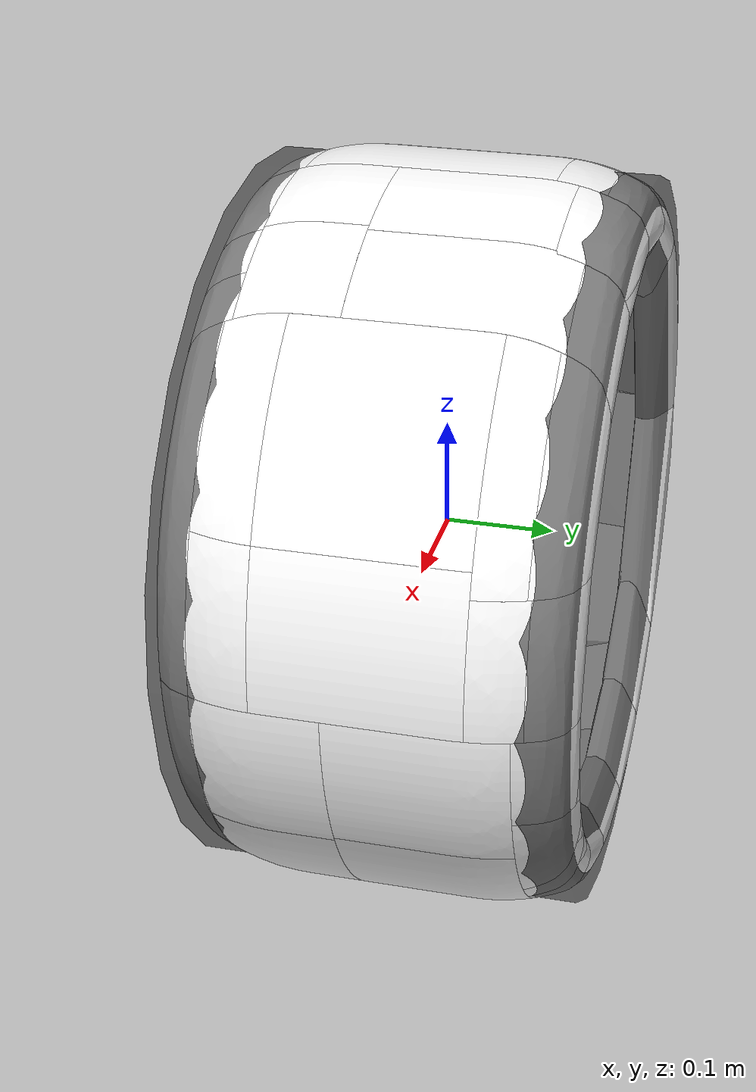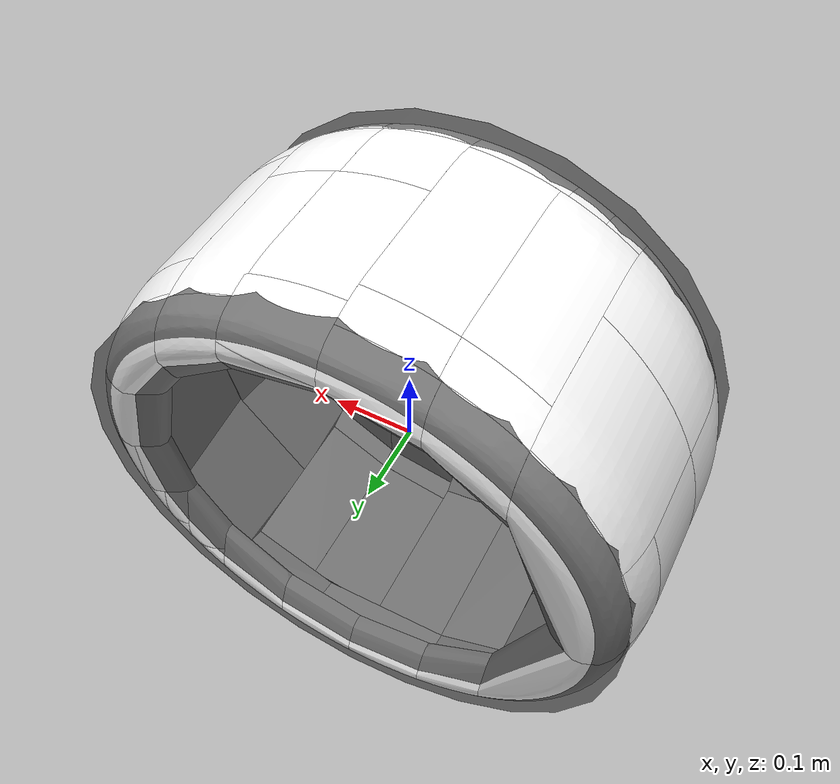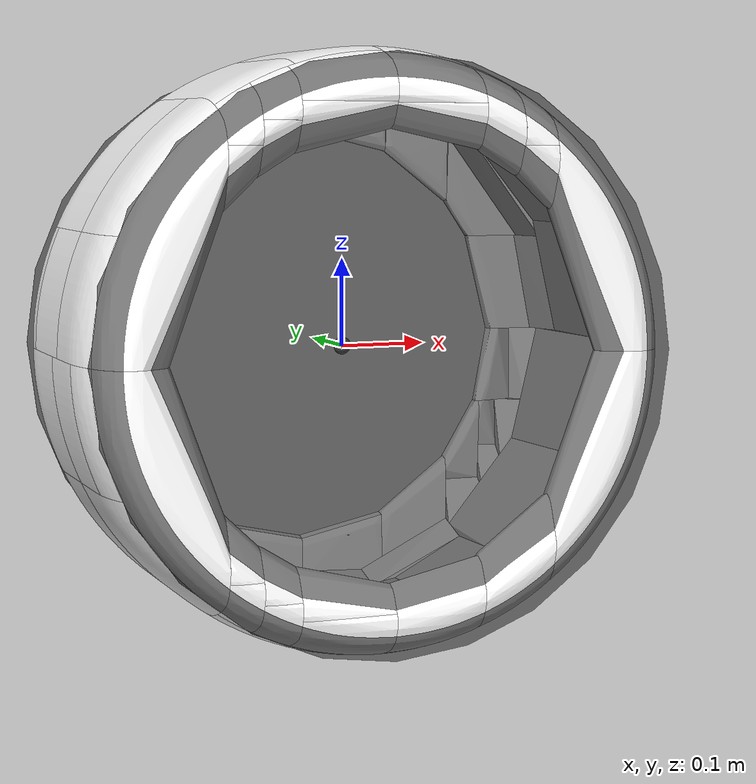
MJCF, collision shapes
<mujoco model="tire_rubber">
<!-- Copyright (c) 2024 Boston Dynamics AI Institute LLC. All rights reserved. -->
    <include file="tire_rubber_defs.xml" />
    <worldbody>
        <body name="tire_rubber">
            <joint name="tire_rubber_joint" type="free"/>
            <!-- https://en.wikipedia.org/wiki/List_of_moments_of_inertia -->
            <inertial pos="0 0 0" mass="15.3" diaginertia="0.57 0.96 0.57"/>

            <geom name="object_primitive_approx" type="cylinder" class="tire_rubber_visual" size="0.33 0.17" quat="1 1 0 0" rgba="0 0 0 0.5"/>
            <geom name="tire_rubber_visual" type="mesh" class="tire_rubber_visual" mesh="tire_rubber_visual" material="tire_rubber_black"/>
            <geom name="tire_rubber_0_collision" type="mesh" class="tire_rubber_collision" mesh="tire_rubber_0_collision"/>
            <geom name="tire_rubber_1_collision" type="mesh" class="tire_rubber_collision" mesh="tire_rubber_1_collision"/>
            <geom name="tire_rubber_2_collision" type="mesh" class="tire_rubber_collision" mesh="tire_rubber_2_collision"/>
            <geom name="tire_rubber_3_collision" type="mesh" class="tire_rubber_collision" mesh="tire_rubber_3_collision"/>
            <geom name="tire_rubber_4_collision" type="mesh" class="tire_rubber_collision" mesh="tire_rubber_4_collision"/>
            <geom name="tire_rubber_5_collision" type="mesh" class="tire_rubber_collision" mesh="tire_rubber_5_collision"/>
            <geom name="tire_rubber_6_collision" type="mesh" class="tire_rubber_collision" mesh="tire_rubber_6_collision"/>
            <geom name="tire_rubber_7_collision" type="mesh" class="tire_rubber_collision" mesh="tire_rubber_7_collision"/>
            <geom name="tire_rubber_8_collision" type="mesh" class="tire_rubber_collision" mesh="tire_rubber_8_collision"/>
            <geom name="tire_rubber_9_collision" type="mesh" class="tire_rubber_collision" mesh="tire_rubber_9_collision"/>
            <geom name="tire_rubber_10_collision" type="mesh" class="tire_rubber_collision" mesh="tire_rubber_10_collision"/>
            <geom name="tire_rubber_11_collision" type="mesh" class="tire_rubber_collision" mesh="tire_rubber_11_collision"/>
            <geom name="tire_rubber_12_collision" type="mesh" class="tire_rubber_collision" mesh="tire_rubber_12_collision"/>
            <geom name="tire_rubber_13_collision" type="mesh" class="tire_rubber_collision" mesh="tire_rubber_13_collision"/>
            <geom name="tire_rubber_14_collision" type="mesh" class="tire_rubber_collision" mesh="tire_rubber_14_collision"/>
            <geom name="tire_rubber_15_collision" type="mesh" class="tire_rubber_collision" mesh="tire_rubber_15_collision"/>
            <geom name="tire_rubber_16_collision" type="mesh" class="tire_rubber_collision" mesh="tire_rubber_16_collision"/>
            <geom name="tire_rubber_17_collision" type="mesh" class="tire_rubber_collision" mesh="tire_rubber_17_collision"/>
            <geom name="tire_rubber_18_collision" type="mesh" class="tire_rubber_collision" mesh="tire_rubber_18_collision"/>
            <geom name="tire_rubber_19_collision" type="mesh" class="tire_rubber_collision" mesh="tire_rubber_19_collision"/>
            <geom name="tire_rubber_20_collision" type="mesh" class="tire_rubber_collision" mesh="tire_rubber_20_collision"/>
            <geom name="tire_rubber_21_collision" type="mesh" class="tire_rubber_collision" mesh="tire_rubber_21_collision"/>
            <geom name="tire_rubber_22_collision" type="mesh" class="tire_rubber_collision" mesh="tire_rubber_22_collision"/>
            <geom name="tire_rubber_23_collision" type="mesh" class="tire_rubber_collision" mesh="tire_rubber_23_collision"/>
            <geom name="tire_rubber_24_collision" type="mesh" class="tire_rubber_collision" mesh="tire_rubber_24_collision"/>
            <geom name="tire_rubber_25_collision" type="mesh" class="tire_rubber_collision" mesh="tire_rubber_25_collision"/>
            <geom name="tire_rubber_26_collision" type="mesh" class="tire_rubber_collision" mesh="tire_rubber_26_collision"/>
            <geom name="tire_rubber_27_collision" type="mesh" class="tire_rubber_collision" mesh="tire_rubber_27_collision"/>
            <geom name="tire_rubber_28_collision" type="mesh" class="tire_rubber_collision" mesh="tire_rubber_28_collision"/>
            <geom name="tire_rubber_29_collision" type="mesh" class="tire_rubber_collision" mesh="tire_rubber_29_collision"/>
            <geom name="tire_rubber_30_collision" type="mesh" class="tire_rubber_collision" mesh="tire_rubber_30_collision"/>
            <geom name="tire_rubber_31_collision" type="mesh" class="tire_rubber_collision" mesh="tire_rubber_31_collision"/>
            <geom name="tire_rubber_32_collision" type="mesh" class="tire_rubber_collision" mesh="tire_rubber_32_collision"/>
            <geom name="tire_rubber_33_collision" type="mesh" class="tire_rubber_collision" mesh="tire_rubber_33_collision"/>
            <geom name="tire_rubber_34_collision" type="mesh" class="tire_rubber_collision" mesh="tire_rubber_34_collision"/>
            <geom name="tire_rubber_35_collision" type="mesh" class="tire_rubber_collision" mesh="tire_rubber_35_collision"/>
            <geom name="tire_rubber_36_collision" type="mesh" class="tire_rubber_collision" mesh="tire_rubber_36_collision"/>
            <geom name="tire_rubber_37_collision" type="mesh" class="tire_rubber_collision" mesh="tire_rubber_37_collision"/>
            <geom name="tire_rubber_38_collision" type="mesh" class="tire_rubber_collision" mesh="tire_rubber_38_collision"/>
            <geom name="tire_rubber_39_collision" type="mesh" class="tire_rubber_collision" mesh="tire_rubber_39_collision"/>
            <geom name="tire_rubber_40_collision" type="mesh" class="tire_rubber_collision" mesh="tire_rubber_40_collision"/>
            <geom name="tire_rubber_41_collision" type="mesh" class="tire_rubber_collision" mesh="tire_rubber_41_collision"/>
            <geom name="tire_rubber_42_collision" type="mesh" class="tire_rubber_collision" mesh="tire_rubber_42_collision"/>
            <geom name="tire_rubber_43_collision" type="mesh" class="tire_rubber_collision" mesh="tire_rubber_43_collision"/>
            <geom name="tire_rubber_44_collision" type="mesh" class="tire_rubber_collision" mesh="tire_rubber_44_collision"/>
            <geom name="tire_rubber_45_collision" type="mesh" class="tire_rubber_collision" mesh="tire_rubber_45_collision"/>
            <geom name="tire_rubber_46_collision" type="mesh" class="tire_rubber_collision" mesh="tire_rubber_46_collision"/>
            <geom name="tire_rubber_47_collision" type="mesh" class="tire_rubber_collision" mesh="tire_rubber_47_collision"/>
            <geom name="tire_rubber_48_collision" type="mesh" class="tire_rubber_collision" mesh="tire_rubber_48_collision"/>
            <geom name="tire_rubber_49_collision" type="mesh" class="tire_rubber_collision" mesh="tire_rubber_49_collision"/>
            <geom name="tire_rubber_50_collision" type="mesh" class="tire_rubber_collision" mesh="tire_rubber_50_collision"/>
            <geom name="tire_rubber_51_collision" type="mesh" class="tire_rubber_collision" mesh="tire_rubber_51_collision"/>
            <geom name="tire_rubber_52_collision" type="mesh" class="tire_rubber_collision" mesh="tire_rubber_52_collision"/>
            <geom name="tire_rubber_53_collision" type="mesh" class="tire_rubber_collision" mesh="tire_rubber_53_collision"/>
            <geom name="tire_rubber_54_collision" type="mesh" class="tire_rubber_collision" mesh="tire_rubber_54_collision"/>
            <geom name="tire_rubber_55_collision" type="mesh" class="tire_rubber_collision" mesh="tire_rubber_55_collision"/>
            <geom name="tire_rubber_56_collision" type="mesh" class="tire_rubber_collision" mesh="tire_rubber_56_collision"/>
            <geom name="tire_rubber_57_collision" type="mesh" class="tire_rubber_collision" mesh="tire_rubber_57_collision"/>
            <geom name="tire_rubber_58_collision" type="mesh" class="tire_rubber_collision" mesh="tire_rubber_58_collision"/>
            <geom name="tire_rubber_59_collision" type="mesh" class="tire_rubber_collision" mesh="tire_rubber_59_collision"/>
            <geom name="tire_rubber_60_collision" type="mesh" class="tire_rubber_collision" mesh="tire_rubber_60_collision"/>
            <geom name="tire_rubber_61_collision" type="mesh" class="tire_rubber_collision" mesh="tire_rubber_61_collision"/>
            <geom name="tire_rubber_62_collision" type="mesh" class="tire_rubber_collision" mesh="tire_rubber_62_collision"/>
            <geom name="tire_rubber_63_collision" type="mesh" class="tire_rubber_collision" mesh="tire_rubber_63_collision"/>
            <geom name="tire_rubber_64_collision" type="mesh" class="tire_rubber_collision" mesh="tire_rubber_64_collision"/>
            <geom name="tire_rubber_65_collision" type="mesh" class="tire_rubber_collision" mesh="tire_rubber_65_collision"/>
            <geom name="tire_rubber_66_collision" type="mesh" class="tire_rubber_collision" mesh="tire_rubber_66_collision"/>
            <geom name="tire_rubber_67_collision" type="mesh" class="tire_rubber_collision" mesh="tire_rubber_67_collision"/>
            <geom name="tire_rubber_68_collision" type="mesh" class="tire_rubber_collision" mesh="tire_rubber_68_collision"/>
            <geom name="tire_rubber_69_collision" type="mesh" class="tire_rubber_collision" mesh="tire_rubber_69_collision"/>
            <geom name="tire_rubber_70_collision" type="mesh" class="tire_rubber_collision" mesh="tire_rubber_70_collision"/>
            <geom name="tire_rubber_71_collision" type="mesh" class="tire_rubber_collision" mesh="tire_rubber_71_collision"/>
            <geom name="tire_rubber_72_collision" type="mesh" class="tire_rubber_collision" mesh="tire_rubber_72_collision"/>
            <geom name="tire_rubber_73_collision" type="mesh" class="tire_rubber_collision" mesh="tire_rubber_73_collision"/>
            <geom name="tire_rubber_74_collision" type="mesh" class="tire_rubber_collision" mesh="tire_rubber_74_collision"/>
            <geom name="tire_rubber_75_collision" type="mesh" class="tire_rubber_collision" mesh="tire_rubber_75_collision"/>
            <geom name="tire_rubber_76_collision" type="mesh" class="tire_rubber_collision" mesh="tire_rubber_76_collision"/>
            <geom name="tire_rubber_77_collision" type="mesh" class="tire_rubber_collision" mesh="tire_rubber_77_collision"/>
            <geom name="tire_rubber_78_collision" type="mesh" class="tire_rubber_collision" mesh="tire_rubber_78_collision"/>
            <geom name="tire_rubber_79_collision" type="mesh" class="tire_rubber_collision" mesh="tire_rubber_79_collision"/>
            <geom name="tire_rubber_80_collision" type="mesh" class="tire_rubber_collision" mesh="tire_rubber_80_collision"/>
            <site name="trace_tire_rubber" pos="0 0 0" size="0.01"/>

            <site name="site_object" pos="0 0 0" size="0.01"/>
        </body>
    </worldbody>

</mujoco>

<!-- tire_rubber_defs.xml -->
<mujoco>
  <!-- Copyright (c) 2025 Boston Dynamics AI Institute LLC. All rights reserved. -->

  <default>
    <default class="tire_rubber_visual">
      <geom type="mesh" contype="0" conaffinity="0" group="2"/>
    </default>
    <default class="tire_rubber_collision">
      <geom friction="1.15 1.0" priority="6" material="tire_rubber_semi_transparent"/>
    </default>
  </default>

  <asset>
      <material name="tire_rubber_black" rgba="0.25 0.25 0.25 1" metallic="0.0" roughness="1.0"/>
      <material name="tire_rubber_semi_transparent" rgba="1 1 1 0.5" metallic="0.0" roughness="1.0"/>
      <mesh name="tire_rubber_visual" file="../../../meshes/tire/visual/tire_rubber.obj"/>
      <mesh name="tire_rubber_0_collision" file="../../../meshes/tire/collision/part_0.obj"/>
      <mesh name="tire_rubber_1_collision" file="../../../meshes/tire/collision/part_1.obj"/>
      <mesh name="tire_rubber_2_collision" file="../../../meshes/tire/collision/part_2.obj"/>
      <mesh name="tire_rubber_3_collision" file="../../../meshes/tire/collision/part_3.obj"/>
      <mesh name="tire_rubber_4_collision" file="../../../meshes/tire/collision/part_4.obj"/>
      <mesh name="tire_rubber_5_collision" file="../../../meshes/tire/collision/part_5.obj"/>
      <mesh name="tire_rubber_6_collision" file="../../../meshes/tire/collision/part_6.obj"/>
      <mesh name="tire_rubber_7_collision" file="../../../meshes/tire/collision/part_7.obj"/>
      <mesh name="tire_rubber_8_collision" file="../../../meshes/tire/collision/part_8.obj"/>
      <mesh name="tire_rubber_9_collision" file="../../../meshes/tire/collision/part_9.obj"/>
      <mesh name="tire_rubber_10_collision" file="../../../meshes/tire/collision/part_10.obj"/>
      <mesh name="tire_rubber_11_collision" file="../../../meshes/tire/collision/part_11.obj"/>
      <mesh name="tire_rubber_12_collision" file="../../../meshes/tire/collision/part_12.obj"/>
      <mesh name="tire_rubber_13_collision" file="../../../meshes/tire/collision/part_13.obj"/>
      <mesh name="tire_rubber_14_collision" file="../../../meshes/tire/collision/part_14.obj"/>
      <mesh name="tire_rubber_15_collision" file="../../../meshes/tire/collision/part_15.obj"/>
      <mesh name="tire_rubber_16_collision" file="../../../meshes/tire/collision/part_16.obj"/>
      <mesh name="tire_rubber_17_collision" file="../../../meshes/tire/collision/part_17.obj"/>
      <mesh name="tire_rubber_18_collision" file="../../../meshes/tire/collision/part_18.obj"/>
      <mesh name="tire_rubber_19_collision" file="../../../meshes/tire/collision/part_19.obj"/>
      <mesh name="tire_rubber_20_collision" file="../../../meshes/tire/collision/part_20.obj"/>
      <mesh name="tire_rubber_21_collision" file="../../../meshes/tire/collision/part_21.obj"/>
      <mesh name="tire_rubber_22_collision" file="../../../meshes/tire/collision/part_22.obj"/>
      <mesh name="tire_rubber_23_collision" file="../../../meshes/tire/collision/part_23.obj"/>
      <mesh name="tire_rubber_24_collision" file="../../../meshes/tire/collision/part_24.obj"/>
      <mesh name="tire_rubber_25_collision" file="../../../meshes/tire/collision/part_25.obj"/>
      <mesh name="tire_rubber_26_collision" file="../../../meshes/tire/collision/part_26.obj"/>
      <mesh name="tire_rubber_27_collision" file="../../../meshes/tire/collision/part_27.obj"/>
      <mesh name="tire_rubber_28_collision" file="../../../meshes/tire/collision/part_28.obj"/>
      <mesh name="tire_rubber_29_collision" file="../../../meshes/tire/collision/part_29.obj"/>
      <mesh name="tire_rubber_30_collision" file="../../../meshes/tire/collision/part_30.obj"/>
      <mesh name="tire_rubber_31_collision" file="../../../meshes/tire/collision/part_31.obj"/>
      <mesh name="tire_rubber_32_collision" file="../../../meshes/tire/collision/part_32.obj"/>
      <mesh name="tire_rubber_33_collision" file="../../../meshes/tire/collision/part_33.obj"/>
      <mesh name="tire_rubber_34_collision" file="../../../meshes/tire/collision/part_34.obj"/>
      <mesh name="tire_rubber_35_collision" file="../../../meshes/tire/collision/part_35.obj"/>
      <mesh name="tire_rubber_36_collision" file="../../../meshes/tire/collision/part_36.obj"/>
      <mesh name="tire_rubber_37_collision" file="../../../meshes/tire/collision/part_37.obj"/>
      <mesh name="tire_rubber_38_collision" file="../../../meshes/tire/collision/part_38.obj"/>
      <mesh name="tire_rubber_39_collision" file="../../../meshes/tire/collision/part_39.obj"/>
      <mesh name="tire_rubber_40_collision" file="../../../meshes/tire/collision/part_40.obj"/>
      <mesh name="tire_rubber_41_collision" file="../../../meshes/tire/collision/part_41.obj"/>
      <mesh name="tire_rubber_42_collision" file="../../../meshes/tire/collision/part_42.obj"/>
      <mesh name="tire_rubber_43_collision" file="../../../meshes/tire/collision/part_43.obj"/>
      <mesh name="tire_rubber_44_collision" file="../../../meshes/tire/collision/part_44.obj"/>
      <mesh name="tire_rubber_45_collision" file="../../../meshes/tire/collision/part_45.obj"/>
      <mesh name="tire_rubber_46_collision" file="../../../meshes/tire/collision/part_46.obj"/>
      <mesh name="tire_rubber_47_collision" file="../../../meshes/tire/collision/part_47.obj"/>
      <mesh name="tire_rubber_48_collision" file="../../../meshes/tire/collision/part_48.obj"/>
      <mesh name="tire_rubber_49_collision" file="../../../meshes/tire/collision/part_49.obj"/>
      <mesh name="tire_rubber_50_collision" file="../../../meshes/tire/collision/part_50.obj"/>
      <mesh name="tire_rubber_51_collision" file="../../../meshes/tire/collision/part_51.obj"/>
      <mesh name="tire_rubber_52_collision" file="../../../meshes/tire/collision/part_52.obj"/>
      <mesh name="tire_rubber_53_collision" file="../../../meshes/tire/collision/part_53.obj"/>
      <mesh name="tire_rubber_54_collision" file="../../../meshes/tire/collision/part_54.obj"/>
      <mesh name="tire_rubber_55_collision" file="../../../meshes/tire/collision/part_55.obj"/>
      <mesh name="tire_rubber_56_collision" file="../../../meshes/tire/collision/part_56.obj"/>
      <mesh name="tire_rubber_57_collision" file="../../../meshes/tire/collision/part_57.obj"/>
      <mesh name="tire_rubber_58_collision" file="../../../meshes/tire/collision/part_58.obj"/>
      <mesh name="tire_rubber_59_collision" file="../../../meshes/tire/collision/part_59.obj"/>
      <mesh name="tire_rubber_60_collision" file="../../../meshes/tire/collision/part_60.obj"/>
      <mesh name="tire_rubber_61_collision" file="../../../meshes/tire/collision/part_61.obj"/>
      <mesh name="tire_rubber_62_collision" file="../../../meshes/tire/collision/part_62.obj"/>
      <mesh name="tire_rubber_63_collision" file="../../../meshes/tire/collision/part_63.obj"/>
      <mesh name="tire_rubber_64_collision" file="../../../meshes/tire/collision/part_64.obj"/>
      <mesh name="tire_rubber_65_collision" file="../../../meshes/tire/collision/part_65.obj"/>
      <mesh name="tire_rubber_66_collision" file="../../../meshes/tire/collision/part_66.obj"/>
      <mesh name="tire_rubber_67_collision" file="../../../meshes/tire/collision/part_67.obj"/>
      <mesh name="tire_rubber_68_collision" file="../../../meshes/tire/collision/part_68.obj"/>
      <mesh name="tire_rubber_69_collision" file="../../../meshes/tire/collision/part_69.obj"/>
      <mesh name="tire_rubber_70_collision" file="../../../meshes/tire/collision/part_70.obj"/>
      <mesh name="tire_rubber_71_collision" file="../../../meshes/tire/collision/part_71.obj"/>
      <mesh name="tire_rubber_72_collision" file="../../../meshes/tire/collision/part_72.obj"/>
      <mesh name="tire_rubber_73_collision" file="../../../meshes/tire/collision/part_73.obj"/>
      <mesh name="tire_rubber_74_collision" file="../../../meshes/tire/collision/part_74.obj"/>
      <mesh name="tire_rubber_75_collision" file="../../../meshes/tire/collision/part_75.obj"/>
      <mesh name="tire_rubber_76_collision" file="../../../meshes/tire/collision/part_76.obj"/>
      <mesh name="tire_rubber_77_collision" file="../../../meshes/tire/collision/part_77.obj"/>
      <mesh name="tire_rubber_78_collision" file="../../../meshes/tire/collision/part_78.obj"/>
      <mesh name="tire_rubber_79_collision" file="../../../meshes/tire/collision/part_79.obj"/>
      <mesh name="tire_rubber_80_collision" file="../../../meshes/tire/collision/part_80.obj"/>
  </asset>
</mujoco>
